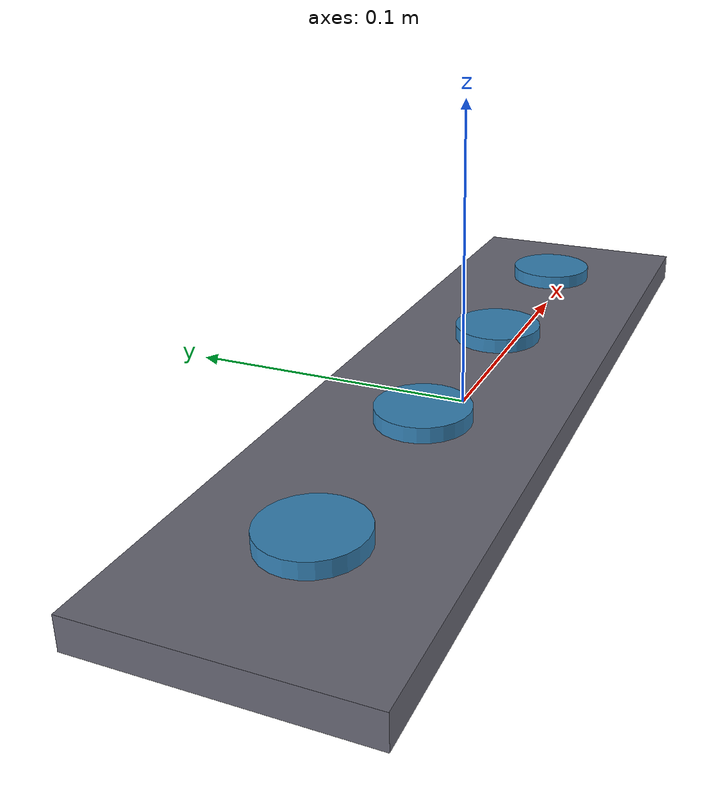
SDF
<?xml version="1.0"?>
<sdf version="1.9">
  <model name="motor_jig">
    <static>true</static>

    <link name="base">
      <pose>0 0 0.005 0 0 0</pose>
      <visual name="base_visual">
        <geometry>
          <box>
            <size>0.300 0.080 0.010</size>
          </box>
        </geometry>
        <material>
          <ambient>0.3 0.3 0.35 1</ambient>
          <diffuse>0.4 0.4 0.45 1</diffuse>
        </material>
      </visual>
      <collision name="base_collision">
        <geometry>
          <box>
            <size>0.300 0.080 0.010</size>
          </box>
        </geometry>
      </collision>
    </link>

    <!-- Four motor-position markers, 70mm pitch, centered on jig.
         z = 0.010 (top of base) + 0.0025 (half marker height) = 0.0125. -->
    <link name="pocket_1">
      <pose>-0.105 0 0.0125 0 0 0</pose>
      <visual name="visual">
        <geometry>
          <cylinder>
            <radius>0.015</radius>
            <length>0.005</length>
          </cylinder>
        </geometry>
        <material>
          <ambient>0.1 0.4 0.6 1</ambient>
          <diffuse>0.2 0.5 0.7 1</diffuse>
        </material>
      </visual>
      <collision name="collision">
        <geometry>
          <cylinder>
            <radius>0.015</radius>
            <length>0.005</length>
          </cylinder>
        </geometry>
      </collision>
    </link>

    <link name="pocket_2">
      <pose>-0.035 0 0.0125 0 0 0</pose>
      <visual name="visual">
        <geometry>
          <cylinder>
            <radius>0.015</radius>
            <length>0.005</length>
          </cylinder>
        </geometry>
        <material>
          <ambient>0.1 0.4 0.6 1</ambient>
          <diffuse>0.2 0.5 0.7 1</diffuse>
        </material>
      </visual>
      <collision name="collision">
        <geometry>
          <cylinder>
            <radius>0.015</radius>
            <length>0.005</length>
          </cylinder>
        </geometry>
      </collision>
    </link>

    <link name="pocket_3">
      <pose>0.035 0 0.0125 0 0 0</pose>
      <visual name="visual">
        <geometry>
          <cylinder>
            <radius>0.015</radius>
            <length>0.005</length>
          </cylinder>
        </geometry>
        <material>
          <ambient>0.1 0.4 0.6 1</ambient>
          <diffuse>0.2 0.5 0.7 1</diffuse>
        </material>
      </visual>
      <collision name="collision">
        <geometry>
          <cylinder>
            <radius>0.015</radius>
            <length>0.005</length>
          </cylinder>
        </geometry>
      </collision>
    </link>

    <link name="pocket_4">
      <pose>0.105 0 0.0125 0 0 0</pose>
      <visual name="visual">
        <geometry>
          <cylinder>
            <radius>0.015</radius>
            <length>0.005</length>
          </cylinder>
        </geometry>
        <material>
          <ambient>0.1 0.4 0.6 1</ambient>
          <diffuse>0.2 0.5 0.7 1</diffuse>
        </material>
      </visual>
      <collision name="collision">
        <geometry>
          <cylinder>
            <radius>0.015</radius>
            <length>0.005</length>
          </cylinder>
        </geometry>
      </collision>
    </link>
  </model>
</sdf>
